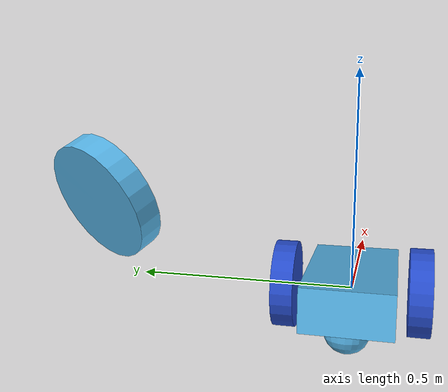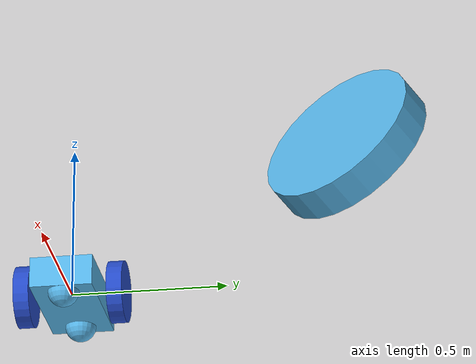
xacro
<?xml version='1.0'?>

<robot name="my_robot" xmlns:xacro="http://www.ros.org/wiki/xacro">

  <link name="robot_footprint"></link>

  <joint name="robot_footprint_joint" type="fixed">
    <origin xyz="0 0 0" rpy="0 0 0" />
    <parent link="robot_footprint"/>
    <child link="chassis" />
  </joint>

  <link name='chassis'>
    <pose>0 0 0.1 0 0 0</pose>

    <inertial>
      <mass value="15.0"/>
      <origin xyz="0.0 0 0" rpy=" 0 0 0"/>
      <inertia
          ixx="0.1" ixy="0" ixz="0"
          iyy="0.1" iyz="0"
          izz="0.1"
      />
    </inertial>

    <collision name='collision'>
      <origin xyz="0 0 0" rpy=" 0 0 0"/>
      <geometry>
        <box size=".4 .2 .1"/>
      </geometry>
    </collision>

    <visual name='chassis_visual'>
      <origin xyz="0 0 0" rpy=" 0 0 0"/>
      <geometry>
        <box size=".4 .2 .1"/>
      </geometry>
    </visual>

    <collision name='back_caster_collision'>
      <origin xyz="-0.15 0 -0.05" rpy=" 0 0 0"/>
      <geometry>
        <sphere radius="0.0499"/>
      </geometry>
    </collision>

    <visual name='back_caster_visual'>
      <origin xyz="-0.15 0 -0.05" rpy=" 0 0 0"/>
      <geometry>
        <sphere radius="0.05"/>
      </geometry>
    </visual>

    <collision name='front_caster_collision'>
      <origin xyz="0.15 0 -0.05" rpy=" 0 0 0"/>
      <geometry>
        <sphere radius="0.0499"/>
      </geometry>
    </collision>

    <visual name='front_caster_visual'>
      <origin xyz="0.15 0 -0.05" rpy=" 0 0 0"/>
      <geometry>
        <sphere radius="0.05"/>
      </geometry>
    </visual>

  	<!-- Realizando testes para entender RPY -->
    <visual>
      <origin xyz="1 1 0" rpy="0.5236 1.0472 0"/>
      	<geometry>
        	<cylinder radius="0.25" length="0.1"/>
      	</geometry>
    </visual>
    <!-- Fim testes RPY                      -->

  </link>

  <!-- Robot Enhancements -->
  <!-- Constants for robots dimensions -->

  <xacro:property name="PI" value="3.1415926535897931"/>
  <xacro:property name="width" value="0.2" />
  <xacro:property name="height" value="0.1" />
  <xacro:property name="length" value="0.4" />
  <xacro:property name="wheel_radius" value="0.1" />
  <xacro:property name="wheel_thickness" value="0.05" />

  <!-- Import Rviz colors -->
  <xacro:include filename="materials.xacro" />

  <!-- Defining the left wheel        -->
  <link name='left_wheel'>
    <inertial>
      <mass value="5.0"/>
      <origin xyz="0 0 0" rpy="0 ${PI/2} ${PI/2}"/>
      <inertia
        ixx="0.1" ixy="0" ixz="0"
        iyy="0.1" iyz="0"
        izz="0.1"
      />
    </inertial>

    <collision>
      <origin xyz="0 0 0" rpy="0 ${PI/2} ${PI/2}"/>
      <geometry>
        <cylinder radius="${wheel_radius}" length="${wheel_thickness}"/>
      </geometry>
    </collision>

    <visual>
      <origin xyz="0 0 0" rpy="0 ${PI/2} ${PI/2}"/>
      <geometry>
        <cylinder radius="${wheel_radius}" length="${wheel_thickness}"/>
      </geometry>
      <material name="blue"/>
    </visual>
  </link>

  <!-- Defining the right wheel        -->
  <link name='right_wheel'>
    <inertial>
      <mass value="5.0"/>
      <origin xyz="0 0 0" rpy="0 ${PI/2} ${PI/2}"/>
      <inertia
        ixx="0.1" ixy="0" ixz="0"
        iyy="0.1" iyz="0"
        izz="0.1"
      />
    </inertial>

    <collision>
      <origin xyz="0 0 0" rpy="0 ${PI/2} ${PI/2}"/>
      <geometry>
        <cylinder radius="${wheel_radius}" length="${wheel_thickness}"/>
      </geometry>
    </collision>

    <visual>
      <origin xyz="0 0 0" rpy="0 ${PI/2} ${PI/2}"/>
      <geometry>
        <cylinder radius="${wheel_radius}" length="${wheel_thickness}"/>
      </geometry>
      <material name="blue"/>
    </visual>
  </link>

  <!-- Defining the joints for the wheels -->
  <!-- Bellow simply copyed from 6/Create Joints for the two wheels -->
  <joint type="continuous" name="left_wheel_hinge">
    <origin xyz="0 0.15 0" rpy="0 0 0"/>
    <child link="left_wheel"/>
    <parent link="chassis"/>
    <axis xyz="0 1 0" rpy="0 0 0"/>
    <limit effort="10000" velocity="1000"/>
    <dynamics damping="1.0" friction="1.0"/>
  </joint>

  <!-- Bellow simply copyed from 6.Create Joints for the two wheels -->
  <joint type="continuous" name="right_wheel_hinge">
    <origin xyz="0 -0.15 0" rpy="0 0 0"/>
    <child link="right_wheel"/>
    <parent link="chassis"/>
    <axis xyz="0 1 0" rpy="0 0 0"/>
    <limit effort="10000" velocity="1000"/>
    <dynamics damping="1.0" friction="1.0"/>
  </joint>

</robot>
